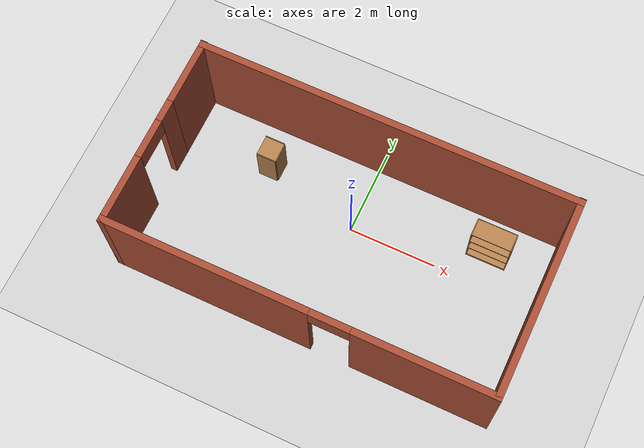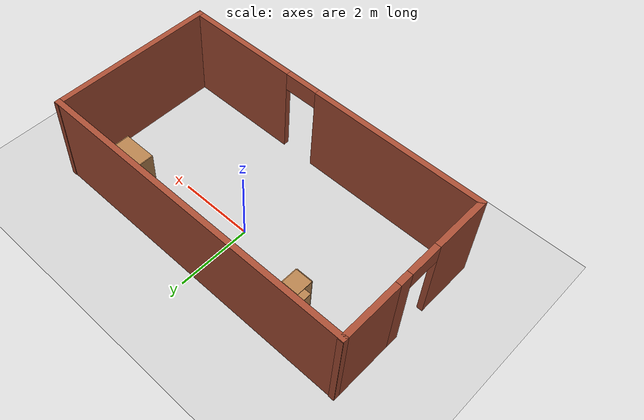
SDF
<sdf version="1.7">
 <world name="default">
  <light name="sun" type="directional">
   <pose>0 0 10 0 -0 0</pose>
   <diffuse>0.8 0.8 0.8 1</diffuse>
   <specular>0.2 0.2 0.2 1</specular>
   <attenuation>
    <range>1000</range>
    <constant>0.9</constant>
    <linear>0.01</linear>
    <quadratic>0.001</quadratic>
   </attenuation>
   <direction>-0.5 0.1 -0.9</direction>
   <spot><inner_angle>0</inner_angle><outer_angle>0</outer_angle><falloff>0</falloff></spot>
  </light>
  <model name="ground_plane">
   <static>1</static>
   <link name="link">
    <collision name="collision">
     <geometry><plane><normal>0 0 1</normal><size>100 100</size></plane></geometry>
     <surface>
      <contact><collide_bitmask>65535</collide_bitmask></contact>
      <friction><ode><mu>100</mu><mu2>50</mu2></ode></friction>
     </surface>
    </collision>
    <visual name="visual">
     <cast_shadows>0</cast_shadows>
     <geometry><plane><normal>0 0 1</normal><size>100 100</size></plane></geometry>
     <material>
      <script><uri>file://media/materials/scripts/gazebo.material</uri><name>Gazebo/Grey</name></script>
     </material>
    </visual>
   </link>
  </model>
  <gravity>0 0 -9.8</gravity>
  <magnetic_field>6e-06 2.3e-05 -4.2e-05</magnetic_field>
  <atmosphere type="adiabatic"/>
  <physics type="ode">
   <max_step_size>0.001</max_step_size>
   <real_time_factor>1</real_time_factor>
   <real_time_update_rate>1000</real_time_update_rate>
  </physics>
  <scene><ambient>0.4 0.4 0.4 1</ambient><background>0.7 0.7 0.7 1</background><shadows>1</shadows></scene>
  <audio><device>default</device></audio>
  <spherical_coordinates>
   <surface_model>EARTH_WGS84</surface_model>
   <latitude_deg>0</latitude_deg>
   <longitude_deg>0</longitude_deg>
   <elevation>0</elevation>
   <heading_deg>0</heading_deg>
  </spherical_coordinates>
  <model name="test">
   <pose>0.055916 -0.568918 0 0 -0 0</pose>
   <link name="Wall_0">
    <pose>-4.3 -0.779 0 0 -0 -1.5708</pose>
    <visual name="Wall_0_Visual_0">
     <pose>-1.246 0 1.25 0 -0 0</pose>
     <geometry><box><size>0.508 0.15 2.5</size></box></geometry>
     <material>
      <script><uri>file://media/materials/scripts/gazebo.material</uri><name>Gazebo/Bricks</name></script>
      <ambient>1 1 1 1</ambient>
     </material>
     <meta><layer>0</layer></meta>
    </visual>
    <collision name="Wall_0_Collision_0">
     <geometry><box><size>0.508 0.15 2.5</size></box></geometry>
     <pose>-1.246 0 1.25 0 -0 0</pose>
    </collision>
    <visual name="Wall_0_Visual_1">
     <pose>0.704 0 1.25 0 -0 0</pose>
     <geometry><box><size>1.592 0.15 2.5</size></box></geometry>
     <material>
      <script><uri>file://media/materials/scripts/gazebo.material</uri><name>Gazebo/Bricks</name></script>
      <ambient>1 1 1 1</ambient>
     </material>
     <meta><layer>0</layer></meta>
    </visual>
    <collision name="Wall_0_Collision_1">
     <geometry><box><size>1.592 0.15 2.5</size></box></geometry>
     <pose>0.704 0 1.25 0 -0 0</pose>
    </collision>
    <visual name="Wall_0_Visual_2">
     <pose>-0.542 0 2.25 0 -0 0</pose>
     <geometry><box><size>0.9 0.15 0.5</size></box></geometry>
     <material>
      <script><uri>file://media/materials/scripts/gazebo.material</uri><name>Gazebo/Bricks</name></script>
      <ambient>1 1 1 1</ambient>
     </material>
     <meta><layer>0</layer></meta>
    </visual>
    <collision name="Wall_0_Collision_2">
     <geometry><box><size>0.9 0.15 0.5</size></box></geometry>
     <pose>-0.542 0 2.25 0 -0 0</pose>
    </collision>
   </link>
   <link name="Wall_1">
    <pose>-0 -2.204 0 0 -0 0</pose>
    <visual name="Wall_1_Visual_0">
     <pose>-2.037 0 1.25 0 -0 0</pose>
     <geometry><box><size>4.676 0.15 2.5</size></box></geometry>
     <material>
      <script><uri>file://media/materials/scripts/gazebo.material</uri><name>Gazebo/Bricks</name></script>
      <ambient>1 1 1 1</ambient>
     </material>
     <meta><layer>0</layer></meta>
    </visual>
    <collision name="Wall_1_Collision_0">
     <geometry><box><size>4.676 0.15 2.5</size></box></geometry>
     <pose>-2.037 0 1.25 0 -0 0</pose>
    </collision>
    <visual name="Wall_1_Visual_1">
     <pose>2.788 0 1.25 0 -0 0</pose>
     <geometry><box><size>3.174 0.15 2.5</size></box></geometry>
     <material>
      <script><uri>file://media/materials/scripts/gazebo.material</uri><name>Gazebo/Bricks</name></script>
      <ambient>1 1 1 1</ambient>
     </material>
     <meta><layer>0</layer></meta>
    </visual>
    <collision name="Wall_1_Collision_1">
     <geometry><box><size>3.174 0.15 2.5</size></box></geometry>
     <pose>2.788 0 1.25 0 -0 0</pose>
    </collision>
    <visual name="Wall_1_Visual_2">
     <pose>0.751 0 2.25 0 -0 0</pose>
     <geometry><box><size>0.9 0.15 0.5</size></box></geometry>
     <material>
      <script><uri>file://media/materials/scripts/gazebo.material</uri><name>Gazebo/Bricks</name></script>
      <ambient>1 1 1 1</ambient>
     </material>
     <meta><layer>0</layer></meta>
    </visual>
    <collision name="Wall_1_Collision_2">
     <geometry><box><size>0.9 0.15 0.5</size></box></geometry>
     <pose>0.751 0 2.25 0 -0 0</pose>
    </collision>
   </link>
   <link name="Wall_2">
    <collision name="Wall_2_Collision">
     <geometry><box><size>4.558 0.15 2.5</size></box></geometry>
     <pose>0 0 1.25 0 -0 0</pose>
    </collision>
    <visual name="Wall_2_Visual">
     <pose>0 0 1.25 0 -0 0</pose>
     <geometry><box><size>4.558 0.15 2.5</size></box></geometry>
     <material>
      <script><uri>file://media/materials/scripts/gazebo.material</uri><name>Gazebo/Bricks</name></script>
      <ambient>1 1 1 1</ambient>
     </material>
     <meta><layer>0</layer></meta>
    </visual>
    <pose>4.3 0 0 0 -0 1.5708</pose>
   </link>
   <link name="Wall_3">
    <collision name="Wall_3_Collision">
     <geometry><box><size>8.75 0.15 2.5</size></box></geometry>
     <pose>0 0 1.25 0 -0 0</pose>
    </collision>
    <visual name="Wall_3_Visual">
     <pose>0 0 1.25 0 -0 0</pose>
     <geometry><box><size>8.75 0.15 2.5</size></box></geometry>
     <material>
      <script><uri>file://media/materials/scripts/gazebo.material</uri><name>Gazebo/Bricks</name></script>
      <ambient>1 1 1 1</ambient>
     </material>
     <meta><layer>0</layer></meta>
    </visual>
    <pose>-0 2.19077 0 0 -0 3.14159</pose>
   </link>
   <link name="Wall_4">
    <collision name="Wall_4_Collision">
     <geometry><box><size>1.708 0.15 2.5</size></box></geometry>
     <pose>0 0 1.25 0 -0 0</pose>
    </collision>
    <visual name="Wall_4_Visual">
     <pose>0 0 1.25 0 -0 0</pose>
     <geometry><box><size>1.708 0.15 2.5</size></box></geometry>
     <material>
      <script><uri>file://media/materials/scripts/gazebo.material</uri><name>Gazebo/Bricks</name></script>
      <ambient>1 1 1 1</ambient>
     </material>
     <meta><layer>0</layer></meta>
    </visual>
    <pose>-4.3 1.425 0 0 -0 -1.5708</pose>
   </link>
   <static>1</static>
  </model>
  <model name="cabinet">
   <static>1</static>
   <link name="cabinet_bottom_plate">
    <inertial>
     <pose>0 0 -1 0 -0 0</pose>
     <inertia><ixx>2.05</ixx><ixy>0</ixy><ixz>0</ixz><iyy>2.05</iyy><iyz>0</iyz><izz>2.05</izz></inertia>
     <mass>25</mass>
    </inertial>
    <collision name="cabinet_bottom_plate_geom">
     <pose>0 0 0.01 0 -0 0</pose>
     <geometry><box><size>0.45 0.45 0.02</size></box></geometry>
    </collision>
    <visual name="cabinet_bottom_plate_geom_visual">
     <pose>0 0 0.01 0 -0 0</pose>
     <geometry><box><size>0.45 0.45 0.02</size></box></geometry>
     <material>
      <script><uri>file://media/materials/scripts/gazebo.material</uri><name>Gazebo/Wood</name></script>
     </material>
    </visual>
    <collision name="cabinet_bottom_plate_geom_cabinet_back_plate">
     <pose>0.235 0 0.51 0 -0 0</pose>
     <geometry><box><size>0.02 0.45 1.02</size></box></geometry>
    </collision>
    <visual name="cabinet_bottom_plate_geom_cabinet_back_plate_visual">
     <pose>0.235 0 0.51 0 -0 0</pose>
     <geometry><box><size>0.02 0.45 1.02</size></box></geometry>
     <material>
      <script><uri>file://media/materials/scripts/gazebo.material</uri><name>Gazebo/Wood</name></script>
     </material>
    </visual>
    <collision name="cabinet_bottom_plate_geom_cabinet_left_plate">
     <pose>0 0.235 0.51 0 -0 0</pose>
     <geometry><box><size>0.45 0.02 1.02</size></box></geometry>
    </collision>
    <visual name="cabinet_bottom_plate_geom_cabinet_left_plate_visual">
     <pose>0 0.235 0.51 0 -0 0</pose>
     <geometry><box><size>0.45 0.02 1.02</size></box></geometry>
     <material>
      <script><uri>file://media/materials/scripts/gazebo.material</uri><name>Gazebo/Wood</name></script>
     </material>
    </visual>
    <collision name="cabinet_bottom_plate_geom_cabinet_middle_plate">
     <pose>0 0 0.51 0 -0 0</pose>
     <geometry><box><size>0.45 0.45 0.02</size></box></geometry>
    </collision>
    <visual name="cabinet_bottom_plate_geom_cabinet_middle_plate_visual">
     <pose>0 0 0.51 0 -0 0</pose>
     <geometry><box><size>0.45 0.45 0.02</size></box></geometry>
     <material>
      <script><uri>file://media/materials/scripts/gazebo.material</uri><name>Gazebo/Wood</name></script>
     </material>
    </visual>
    <collision name="cabinet_bottom_plate_geom_cabinet_right_plate">
     <pose>0 -0.235 0.51 0 -0 0</pose>
     <geometry><box><size>0.45 0.02 1.02</size></box></geometry>
    </collision>
    <visual name="cabinet_bottom_plate_geom_cabinet_right_plate_visual">
     <pose>0 -0.235 0.51 0 -0 0</pose>
     <geometry><box><size>0.45 0.02 1.02</size></box></geometry>
     <material>
      <script><uri>file://media/materials/scripts/gazebo.material</uri><name>Gazebo/Wood</name></script>
     </material>
    </visual>
    <collision name="cabinet_bottom_plate_geom_cabinet_top_plate">
     <pose>0 0 1.01 0 -0 0</pose>
     <geometry><box><size>0.45 0.45 0.02</size></box></geometry>
    </collision>
    <visual name="cabinet_bottom_plate_geom_cabinet_top_plate_visual">
     <pose>0 0 1.01 0 -0 0</pose>
     <geometry><box><size>0.45 0.45 0.02</size></box></geometry>
     <material>
      <script><uri>file://media/materials/scripts/gazebo.material</uri><name>Gazebo/Wood</name></script>
     </material>
    </visual>
   </link>
   <pose>-2.2341 0.623438 0 0 -0 0</pose>
  </model>
  <model name="bookshelf">
   <static>1</static>
   <link name="link">
    <inertial><mass>1</mass></inertial>
    <collision name="back">
     <pose>0 0.005 0.6 0 -0 0</pose>
     <geometry><box><size>0.9 0.01 1.2</size></box></geometry>
    </collision>
    <visual name="visual1">
     <pose>0 0.005 0.6 0 -0 0</pose>
     <geometry><box><size>0.9 0.01 1.2</size></box></geometry>
     <material>
      <script><uri>file://media/materials/scripts/gazebo.material</uri><name>Gazebo/Wood</name></script>
     </material>
    </visual>
    <collision name="left_side">
     <pose>0.45 -0.195 0.6 0 -0 0</pose>
     <geometry><box><size>0.02 0.4 1.2</size></box></geometry>
    </collision>
    <visual name="visual2">
     <pose>0.45 -0.195 0.6 0 -0 0</pose>
     <geometry><box><size>0.02 0.4 1.2</size></box></geometry>
     <material>
      <script><uri>file://media/materials/scripts/gazebo.material</uri><name>Gazebo/Wood</name></script>
     </material>
    </visual>
    <collision name="right_side">
     <pose>-0.45 -0.195 0.6 0 -0 0</pose>
     <geometry><box><size>0.02 0.4 1.2</size></box></geometry>
    </collision>
    <visual name="visual3">
     <pose>-0.45 -0.195 0.6 0 -0 0</pose>
     <geometry><box><size>0.02 0.4 1.2</size></box></geometry>
     <material>
      <script><uri>file://media/materials/scripts/gazebo.material</uri><name>Gazebo/Wood</name></script>
     </material>
    </visual>
    <collision name="bottom">
     <pose>0 -0.195 0.03 0 -0 0</pose>
     <geometry><box><size>0.88 0.4 0.06</size></box></geometry>
    </collision>
    <visual name="visual4">
     <pose>0 -0.195 0.03 0 -0 0</pose>
     <geometry><box><size>0.88 0.4 0.06</size></box></geometry>
     <material>
      <script><uri>file://media/materials/scripts/gazebo.material</uri><name>Gazebo/Wood</name></script>
     </material>
    </visual>
    <collision name="top">
     <pose>0 -0.195 1.19 0 -0 0</pose>
     <geometry><box><size>0.88 0.4 0.02</size></box></geometry>
    </collision>
    <visual name="visual5">
     <pose>0 -0.195 1.19 0 -0 0</pose>
     <geometry><box><size>0.88 0.4 0.02</size></box></geometry>
     <material>
      <script><uri>file://media/materials/scripts/gazebo.material</uri><name>Gazebo/Wood</name></script>
     </material>
    </visual>
    <collision name="low_shelf">
     <pose>0 -0.195 0.43 0 -0 0</pose>
     <geometry><box><size>0.88 0.4 0.02</size></box></geometry>
    </collision>
    <visual name="visual6">
     <pose>0 -0.195 0.43 0 -0 0</pose>
     <geometry><box><size>0.88 0.4 0.02</size></box></geometry>
     <material>
      <script><uri>file://media/materials/scripts/gazebo.material</uri><name>Gazebo/Wood</name></script>
     </material>
    </visual>
    <collision name="high_shelf">
     <pose>0 -0.195 0.8 0 -0 0</pose>
     <geometry><box><size>0.88 0.4 0.02</size></box></geometry>
    </collision>
    <visual name="visual7">
     <pose>0 -0.195 0.8 0 -0 0</pose>
     <geometry><box><size>0.88 0.4 0.02</size></box></geometry>
     <material>
      <script><uri>file://media/materials/scripts/gazebo.material</uri><name>Gazebo/Wood</name></script>
     </material>
    </visual>
   </link>
   <pose>2.98308 0.945214 0 0 -0 0</pose>
  </model>
 </world>
</sdf>
